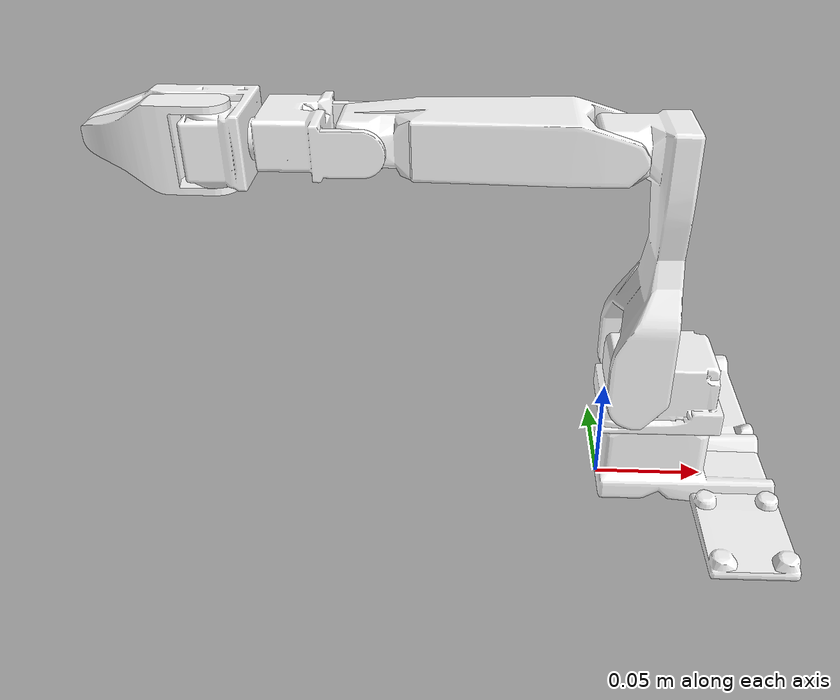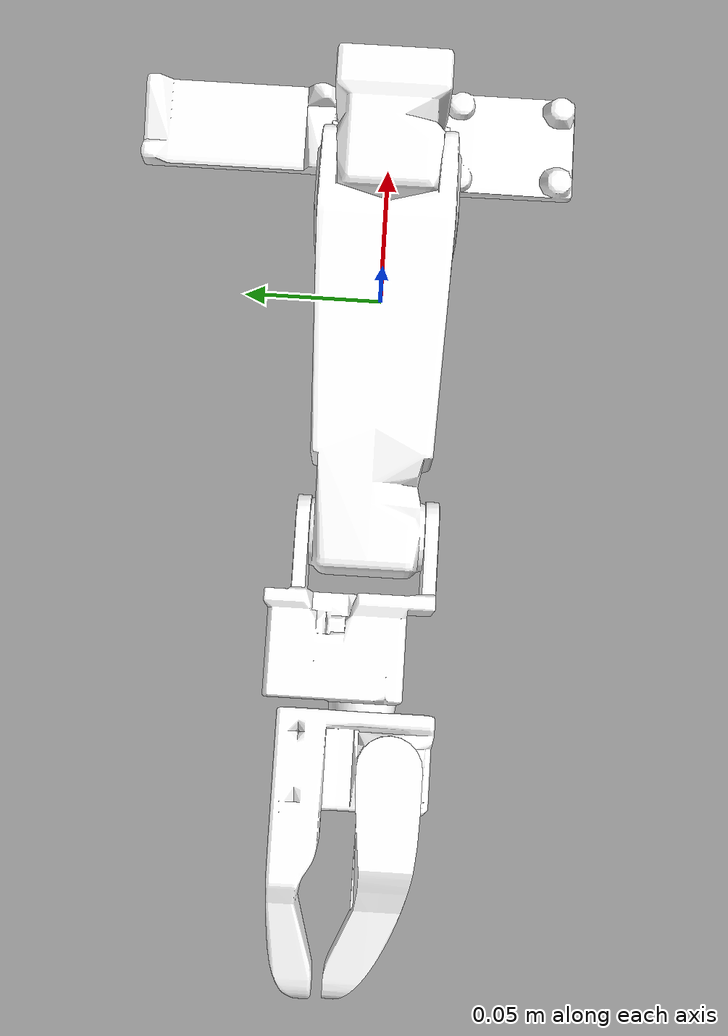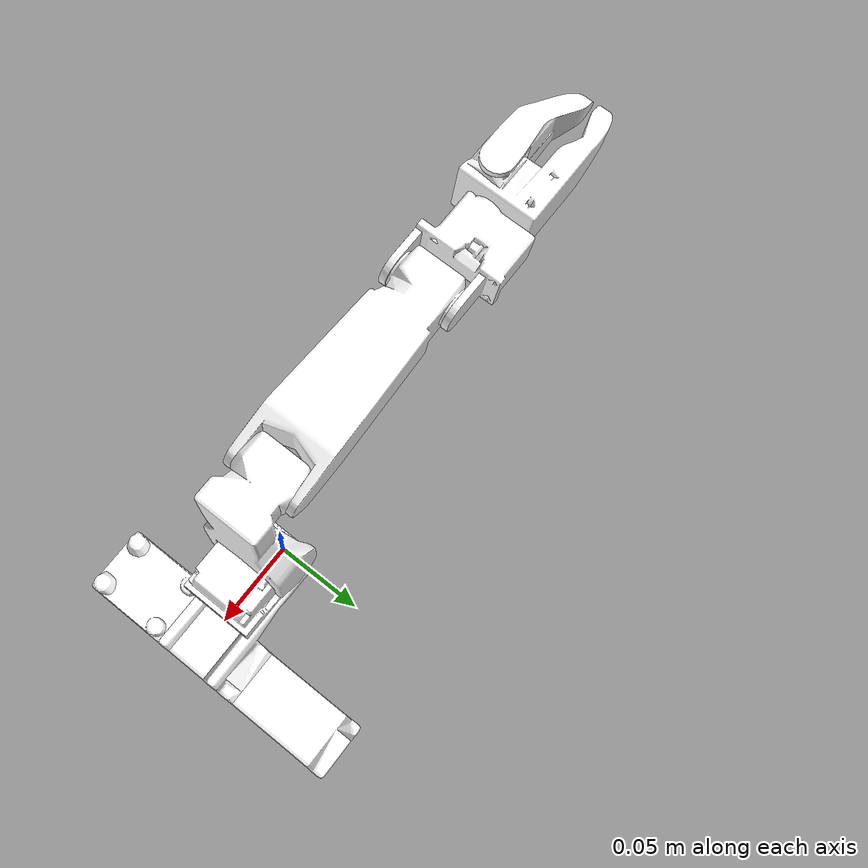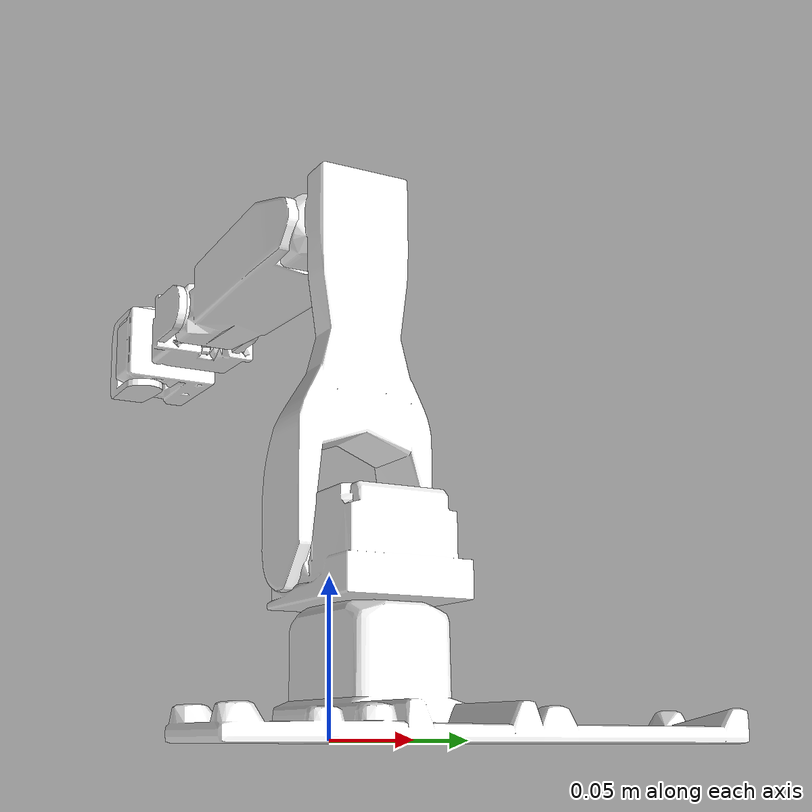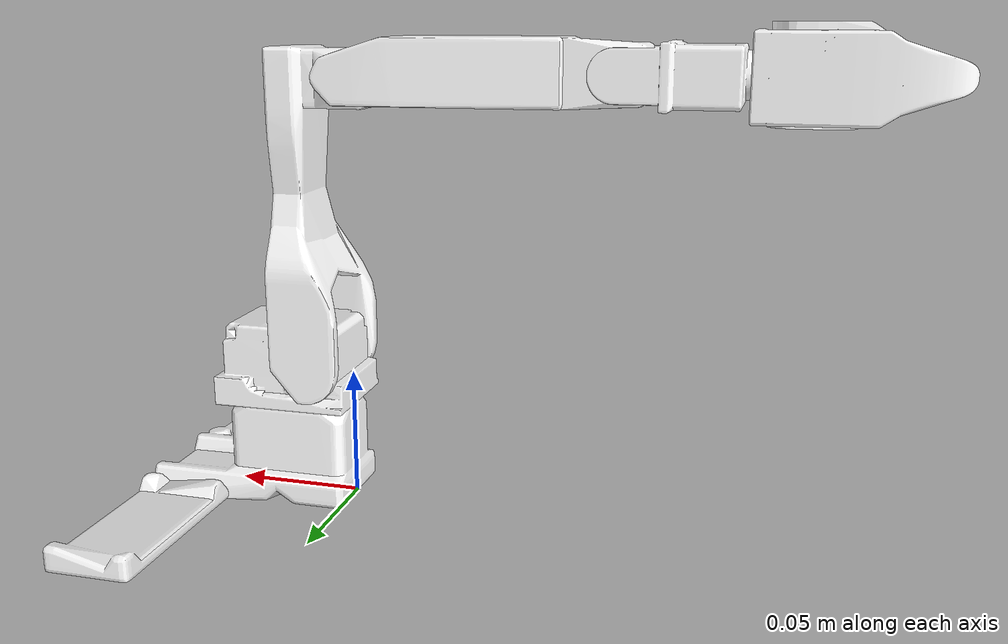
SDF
<?xml version="1.0"?>
<sdf version="1.7">
  <model name="follower">
    <link name="base_link">
      <pose>0 0 0 0 0 0</pose>
      <inertial>
        <mass>0.1</mass>
        <inertia>
          <ixx>1e-5</ixx>
          <ixy>0</ixy>
          <ixz>0</ixz>
          <iyy>1e-5</iyy>
          <iyz>0</iyz>
          <izz>1e-5</izz>
        </inertia>
      </inertial>
      <visual name="base_link_visual">
        <pose>0 0 0 1.5708 0 0</pose>
        <geometry>
          <mesh>
            <uri>follower_meshes/base_link_collision.obj</uri>
            <scale>1.0 1.0 1.0</scale>
          </mesh>
        </geometry>
        <material>
          <diffuse>1 1 1 1</diffuse>
        </material>
      </visual>
      <collision name="base_link_collision">
        <pose>0 0 0 1.5708 0 0</pose>
        <geometry>
          <mesh>
            <uri>follower_meshes/base_link_collision.obj</uri>
            <scale>1.0 1.0 1.0</scale>
          </mesh>
        </geometry>
      </collision>
    </link>

    <joint name="joint_1" type="revolute">
      <parent>base_link</parent>
      <child>shoulder</child>
      <pose relative_to="shoulder">0 0 0 0 0 0</pose>
      <axis>
        <xyz>0 0 -1</xyz>
      </axis>
    </joint>

    <link name="shoulder">
      <pose relative_to="base_link">0.012 0 0.0409 0 0 0</pose>
      <inertial>
        <pose>0.011924 -0.00048792 0.013381 3.1415 1.5708 0</pose>
        <mass>0.05014</mass>
        <inertia>
          <ixx>1.44921e-05</ixx>
          <ixy>0</ixy>
          <ixz>0</ixz>
          <iyy>1.2371e-05</iyy>
          <iyz>0</iyz>
          <izz>7.59138e-06</izz>
        </inertia>
      </inertial>
      <visual name="shoulder_visual">
        <pose>0 0 0 0 0 0</pose>
        <geometry>
          <mesh>
            <uri>follower_meshes/link_1_collision.obj</uri>
            <scale>1.0 1.0 1.0</scale>
          </mesh>
        </geometry>
        <material>
          <diffuse>1 1 1 1</diffuse>
        </material>
      </visual>
      <collision name="shoulder_collision">
        <pose>0 0 0 0 0 0</pose>
        <geometry>
          <mesh>
            <uri>follower_meshes/link_1_collision.obj</uri>
            <scale>1.0 1.0 1.0</scale>
          </mesh>
        </geometry>
      </collision>
    </link>

    <joint name="joint_2" type="revolute">
      <parent>shoulder</parent>
      <child>upper_arm</child>
      <pose relative_to="upper_arm">0 0 0 0 0 0</pose>
      <axis>
        <xyz>0 1 0</xyz>
      </axis>
    </joint>

    <link name="upper_arm">
      <pose relative_to="shoulder">0 -0.0209 0.0154 0 0 0</pose>
      <inertial>
        <pose>0.0011747 0.02097 0.071547 0 0 0</pose>
        <mass>0.050177</mass>
        <inertia>
          <ixx>3.73065e-05</ixx>
          <ixy>0</ixy>
          <ixz>0</ixz>
          <iyy>3.3772e-05</iyy>
          <iyz>0</iyz>
          <izz>7.94901e-06</izz>
        </inertia>
      </inertial>
      <visual name="upper_arm_visual">
        <pose>0 0 0 0 0 0</pose>
        <geometry>
          <mesh>
            <uri>follower_meshes/link_2_collision.obj</uri>
            <scale>1.0 1.0 1.0</scale>
          </mesh>
        </geometry>
        <material>
          <diffuse>1 1 1 1</diffuse>
        </material>
      </visual>
      <collision name="upper_arm_collision">
        <pose>0 0 0 0 0 0</pose>
        <geometry>
          <mesh>
            <uri>follower_meshes/link_2_collision.obj</uri>
            <scale>1.0 1.0 1.0</scale>
          </mesh>
        </geometry>
      </collision>
    </link>

    <joint name="joint_3" type="revolute">
      <parent>upper_arm</parent>
      <child>forearm</child>
      <pose relative_to="forearm">0 0 0 0 0 0</pose>
      <axis>
        <xyz>0 1 0</xyz>
      </axis>
    </joint>

    <link name="forearm">
      <pose relative_to="upper_arm">-0.0148 0.0065 0.1083 0 0 0</pose>
      <inertial>
        <pose>-0.05537 0.014505 0.0028659 3.1415 1.5708 0</pose>
        <mass>0.06379</mass>
        <inertia>
          <ixx>2.45081e-05</ixx>
          <ixy>0</ixy>
          <ixz>0</ixz>
          <iyy>2.2231e-05</iyy>
          <iyz>0</iyz>
          <izz>7.34061e-06</izz>
        </inertia>
      </inertial>
      <visual name="forearm_visual">
        <pose>0 0 0 0 0 0</pose>
        <geometry>
          <mesh>
            <uri>follower_meshes/link_3_collision.obj</uri>
            <scale>1.0 1.0 1.0</scale>
          </mesh>
        </geometry>
        <material>
          <diffuse>1 1 1 1</diffuse>
        </material>
      </visual>
      <collision name="forearm_collision">
        <pose>0 0 0 0 0 0</pose>
        <geometry>
          <mesh>
            <uri>follower_meshes/link_3_collision.obj</uri>
            <scale>1.0 1.0 1.0</scale>
          </mesh>
        </geometry>
      </collision>
    </link>

    <joint name="joint_4" type="revolute">
      <parent>forearm</parent>
      <child>wrist</child>
      <pose relative_to="wrist">0 0 0 0 0 0</pose>
      <axis>
        <xyz>0 1 0</xyz>
      </axis>
    </joint>

    <link name="wrist">
      <pose relative_to="forearm">-0.10048 5e-05 0.0026999 0 0 0</pose>
      <inertial>
        <pose>-0.02652 0.019195 -9.0614e-06 1.5708 0 0</pose>
        <mass>0.019805</mass>
        <inertia>
          <ixx>2.95813e-06</ixx>
          <ixy>0</ixy>
          <ixz>0</ixz>
          <iyy>2.8759e-06</iyy>
          <iyz>0</iyz>
          <izz>1.07787e-06</izz>
        </inertia>
      </inertial>
      <visual name="wrist_visual">
        <pose>0 0 0 0 0 0</pose>
        <geometry>
          <mesh>
            <uri>follower_meshes/link_4_collision.obj</uri>
            <scale>1.0 1.0 1.0</scale>
          </mesh>
        </geometry>
        <material>
          <diffuse>1 1 1 1</diffuse>
        </material>
      </visual>
      <collision name="wrist_collision">
        <pose>0 0 0 0 0 0</pose>
        <geometry>
          <mesh>
            <uri>follower_meshes/link_4_collision.obj</uri>
            <scale>1.0 1.0 1.0</scale>
          </mesh>
        </geometry>
      </collision>
    </link>

    <joint name="joint_5" type="revolute">
      <parent>wrist</parent>
      <child>hand</child>
      <pose relative_to="hand">0 0 0 0 0 0</pose>
      <axis>
        <xyz>1 0 0</xyz>
      </axis>
    </joint>

    <link name="hand">
      <pose relative_to="wrist">-0.045 0.013097 0 0 0 0</pose>
      <inertial>
        <pose>-0.019091 0.0053379 0.00018011 3.1415 1.5708 0</pose>
        <mass>0.029277</mass>
        <inertia>
          <ixx>8.11303e-06</ixx>
          <ixy>0</ixy>
          <ixz>0</ixz>
          <iyy>7.14908e-06</iyy>
          <iyz>0</iyz>
          <izz>3.27429e-06</izz>
        </inertia>
      </inertial>
      <visual name="hand_visual">
        <pose>0 0 0 0 0 0</pose>
        <geometry>
          <mesh>
            <uri>follower_meshes/link_5_collision.obj</uri>
            <scale>1.0 1.0 1.0</scale>
          </mesh>
        </geometry>
        <material>
          <diffuse>1 1 1 1</diffuse>
        </material>
      </visual>
      <collision name="hand_collision">
        <pose>0 0 0 0 0 0</pose>
        <geometry>
          <mesh>
            <uri>follower_meshes/link_5_collision.obj</uri>
            <scale>1.0 1.0 1.0</scale>
          </mesh>
        </geometry>
        <drake:proximity_properties>
          <drake:rigid_hydroelastic/>
        </drake:proximity_properties>
      </collision>
    </link>

    <joint name="joint_6" type="revolute">
      <parent>hand</parent>
      <child>thumb</child>
      <pose relative_to="thumb">0 0 0 0 0 0</pose>
      <axis>
        <xyz>0 0 -1</xyz>
      </axis>
    </joint>

    <link name="thumb">
      <pose relative_to="hand">-0.01315 -0.0075 0.0145 0 0 0</pose>
      <inertial>
        <pose>-0.02507 0.0010817 -0.01414 1.5708 1.5708 0</pose>
        <mass>0.012831</mass>
        <inertia>
          <ixx>3.49922e-06</ixx>
          <ixy>0</ixy>
          <ixz>0</ixz>
          <iyy>2.45768e-06</iyy>
          <iyz>0</iyz>
          <izz>1.4645e-06</izz>
        </inertia>
      </inertial>
      <visual name="thumb_visual">
        <pose>0 0 0 0 0 0</pose>
        <geometry>
          <mesh>
            <uri>follower_meshes/link_6_collision.obj</uri>
            <scale>1.0 1.0 1.0</scale>
          </mesh>
        </geometry>
        <material>
          <diffuse>1 1 1 1</diffuse>
        </material>
      </visual>
      <collision name="thumb_collision">
        <pose>0 0 0 0 0 0</pose>
        <geometry>
          <mesh>
            <uri>follower_meshes/link_6_collision.obj</uri>
            <scale>1.0 1.0 1.0</scale>
          </mesh>
        </geometry>
        <drake:proximity_properties>
          <drake:rigid_hydroelastic/>
        </drake:proximity_properties>
      </collision>
    </link>
  </model>
</sdf>
